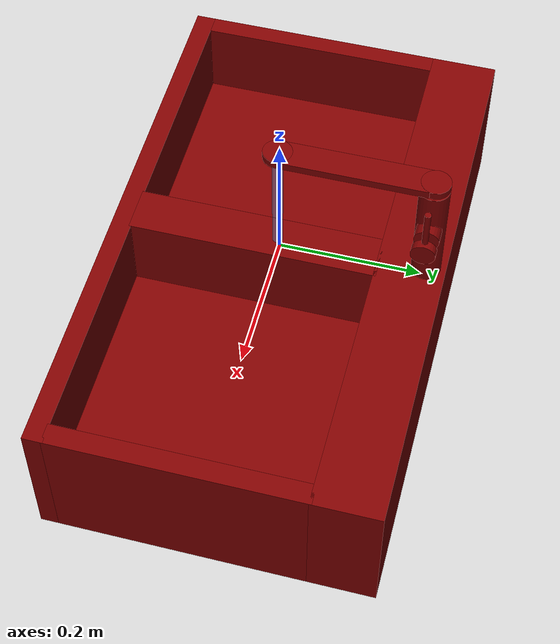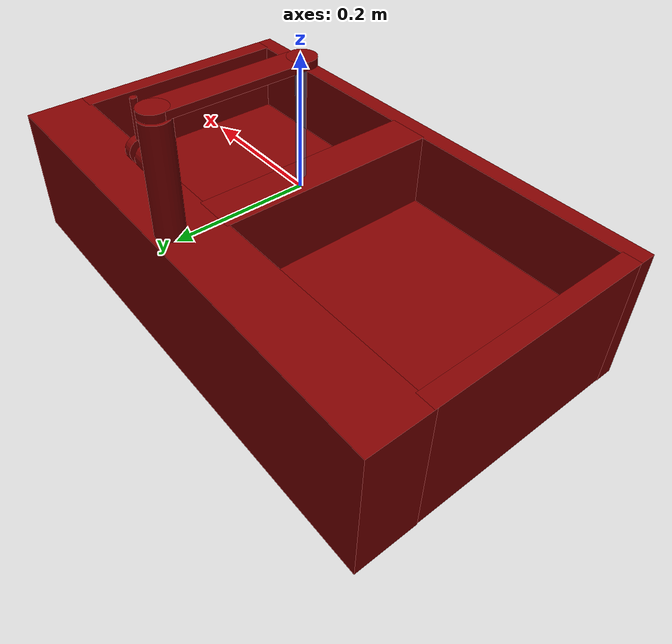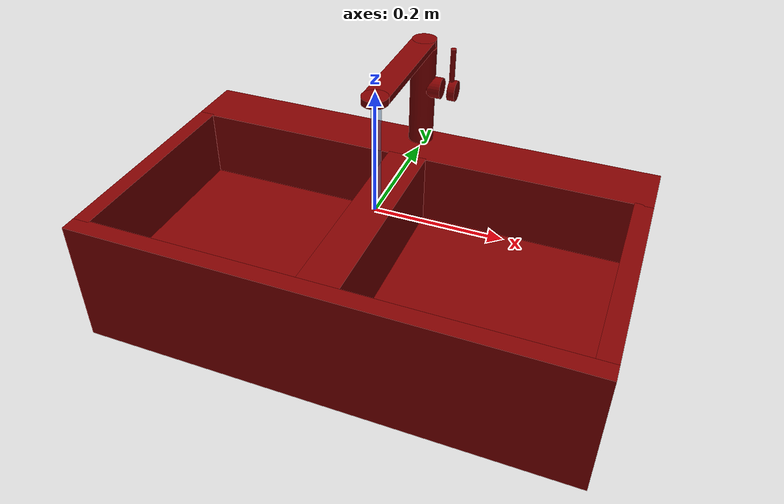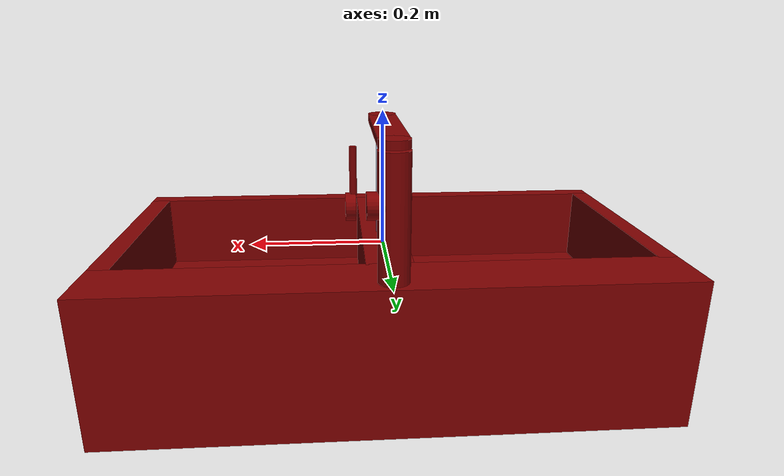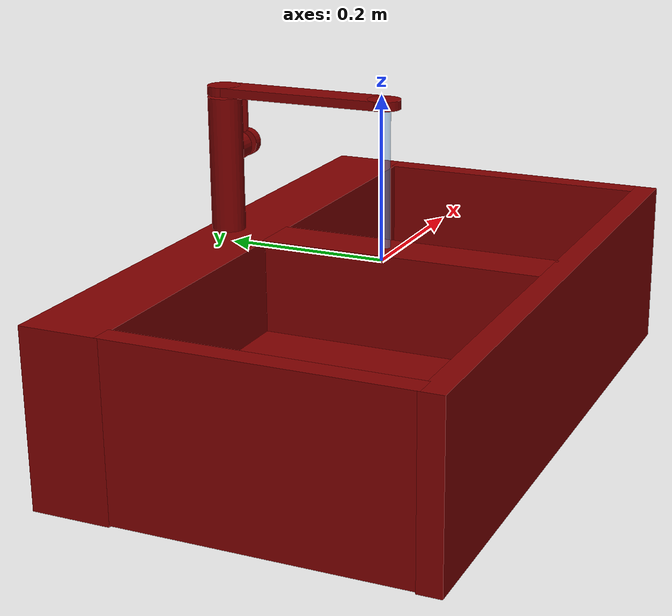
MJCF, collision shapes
<?xml version='1.0' encoding='UTF-8'?>
<mujoco model="model">
  <option timestep="0.002" gravity="0.0 0.0 -9.81"/>
  <compiler angle="radian"/>
  <asset>
    <mesh file="visuals/handle.obj" name="handle_vis"/>
    <mesh file="visuals/Body001.obj" name="Body001_vis"/>
    <mesh file="visuals/spout.obj" name="spout_vis"/>
    <texture file="visuals/T_BC001.png" name="Body001_material" type="2d"/>
    <material name="Body001_material" rgba="1 1 1 1.0" texture="Body001_material" shininess="0.1" specular="1"/>
    <texture file="visuals/T_BC001.png" name="handle_material" type="2d"/>
    <material name="handle_material" rgba="1 1 1 1.0" texture="handle_material" shininess="0.1" specular="1"/>
    <texture file="visuals/T_BC001.png" name="spout_material" type="2d"/>
    <material name="spout_material" rgba="1 1 1 1.0" texture="spout_material" shininess="0.1" specular="1"/>
  </asset>
  <default>
    <default class="visual">
      <geom conaffinity="0" contype="0" group="1" type="mesh"/>
    </default>
    <default class="collision">
      <geom group="0" rgba="0.5 0 0 0.5" solimp="0.998 0.998 0.001" solref="0.001 2"/>
    </default>
    <default class="spawn">
      <geom group="0" rgba="1 1 1 0.5" contype="0" conaffinity="0"/>
      <site group="0" rgba="1 1 1 0.5"/>
    </default>
    <default class="region">
      <geom group="1" conaffinity="0" contype="0" rgba="0 1 0 0"/>
    </default>
  </default>
  <worldbody>
    <body>
      <body name="object">
        <geom mesh="Body001_vis" type="mesh" solimp="0.998 0.998 0.001" solref="0.001 1" friction="0.95 0.3 0.1" class="visual" material="Body001_material"/>
        <geom class="collision" type="box" pos="-3.787135938182473e-09 0.18724274635314941 -0.0892658531665802" size="0.39714476466178894 0.0477617010474205 0.10573208332061768" quat="1.0 0.0 0.0 0.0"/>
        <geom class="collision" type="box" pos="-0.3835948407649994 -0.033086974173784256 -0.08819715678691864" size="0.01354987733066082 0.1766209453344345 0.10466339439153671" quat="1.0 0.0 0.0 0.0"/>
        <geom class="collision" type="box" pos="-7.747439667582512e-08 -0.2208314687013626 -0.0892658531665802" size="0.39714470505714417 0.01417297963052988 0.10573208332061768" quat="1.0 0.0 0.0 0.0"/>
        <geom class="collision" type="box" pos="0.00021651647693943232 -0.033086974173784256 -0.04352673888206482" size="0.03260629251599312 0.1766209453344345 0.059992969036102295" quat="1.0 0.0 0.0 0.0"/>
        <geom class="collision" type="box" pos="0.38253718614578247 -0.033086974173784256 -0.0892658531665802" size="0.014607559889554977 0.1766209453344345 0.10573208332061768" quat="1.0 0.0 0.0 0.0"/>
        <geom class="collision" type="box" pos="-0.0109272301197052 -0.03498511761426926 -0.1470508724451065" size="0.3822481334209442 0.17653101682662964 0.047947075217962265" quat="1.0 0.0 0.0 0.0"/>
        <geom class="collision" type="cylinder" pos="0.021211083978414536 0.20678181946277618 0.11458278447389603" size="0.017117556184530258 0.013172226026654243" quat="0.7071068286895752 -0.0 0.7071067690849304 0.0"/>
        <geom class="collision" type="cylinder" pos="0.0008204355835914612 0.20678181946277618 0.0975254625082016" size="0.02076876163482666 0.0839449018239975" quat="1.0 0.0 0.0 0.0"/>
        <body name="handle">
          <joint axis="1.0 0.0 0.0" pos="0.04457256570458412 0.20660780370235443 0.11415078490972519" limited="true" name="handle_temp_joint" type="hinge" range="-0.7853981633974483 0.7853981633974483" damping="0.5" frictionloss="1" armature="2"/>
          <joint axis="0.0 1.0 0.0" pos="0.04457256570458412 0.20660780370235443 0.11415078490972519" limited="true" name="handle_joint" type="hinge" range="0 0.5" damping="0.5" frictionloss="1" armature="2"/>
          <geom mesh="handle_vis" type="mesh" solimp="0.998 0.998 0.001" solref="0.001 1" friction="0.95 0.3 0.1" class="visual" material="handle_material"/>
          <geom name="handle_main" class="collision" type="cylinder" pos="0.04969841241836548 0.206781804561615 0.15749232470989227" size="0.004394851624965668 0.028539974242448807" quat="1.0 0.0 0.0 0.0"/>
          <geom class="collision" type="cylinder" pos="0.05304247885942459 0.20678181946277618 0.11448652297258377" size="0.01678140088915825 0.0060865203849971294" quat="0.7071068286895752 -0.0 0.7071067690849304 0.0"/>
        </body>
        <body name="spout">
          <joint axis="0.0 0.0 1.0" pos="0.001717638224363327 0.20676535367965698 0.18952012062072754" limited="true" name="spout_joint" range="-1.0471975511965976 1.0471975511965976" type="hinge" damping="10"/>
          <site type="cylinder" rgba="0.5 0.75 1 0.5" size="0.007499999832361937 0.17985022068023682" pos="0.002568766474723816 -0.00216944282874465 0.005688253324478865" name="water"/>
          <geom mesh="spout_vis" type="mesh" solimp="0.998 0.998 0.001" solref="0.001 1" friction="0.95 0.3 0.1" class="visual" material="spout_material"/>
          <geom class="collision" type="cylinder" pos="0.0008204318583011627 0.2074984461069107 0.18958650529384613" size="0.02007378451526165 0.0055007669143378735" quat="1.0 0.0 0.0 0.0"/>
          <geom class="collision" type="cylinder" pos="0.0008204318583011627 -0.00272449292242527 0.18958650529384613" size="0.02007378451526165 0.0055007669143378735" quat="1.0 0.0 0.0 0.0"/>
          <geom class="collision" type="box" pos="0.0011377818882465363 0.10252441465854645 0.1895374357700348" size="0.019647881388664246 0.09993328154087067 0.0054633584804832935" quat="1.0 0.0 0.0 0.0" name="spout_main"/>
        </body>
        <geom class="region" name="reg_basin_left" type="box" pos="-0.202250299975276 -0.03324682265520096 -0.04120562132447958" size="0.15526734276115894 0.16690676456689835 0.05349969754368067"/>
        <geom class="region" name="reg_basin_right" type="box" pos="0.2015998549759388 -0.033246830105781555 -0.04126520548015833" size="0.1552673520743847 0.16690675711631775 0.05346283765882254"/>
        <geom class="region" name="reg_main" type="box" pos="7.450580596923828e-09 0.0 -0.089265838265419" size="0.39814473485946655 0.23600442504882813 0.10673209822177887"/>
      </body>
    </body>
  </worldbody>
  <actuator>
    <motor name="handle_joint_actuator" joint="handle_joint" gear="10"/>
    <motor name="handle_temp_joint_actuator" joint="handle_temp_joint" gear="10"/>
    <motor name="spout_joint_actuator" joint="spout_joint" gear="10"/>
  </actuator>
</mujoco>
